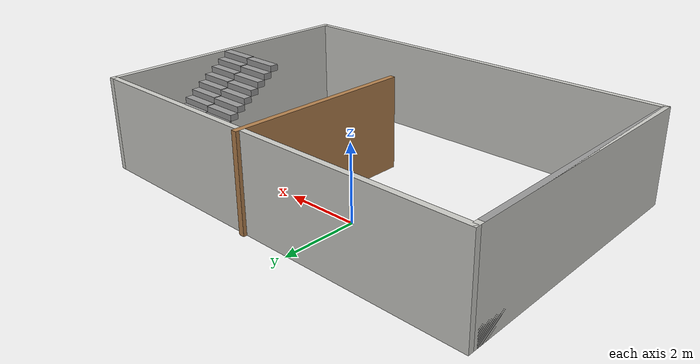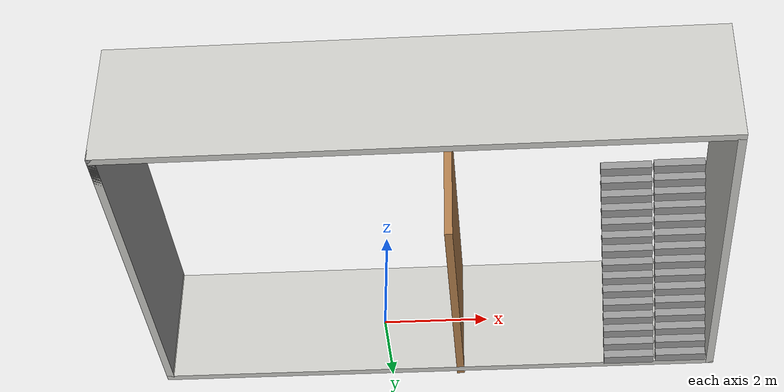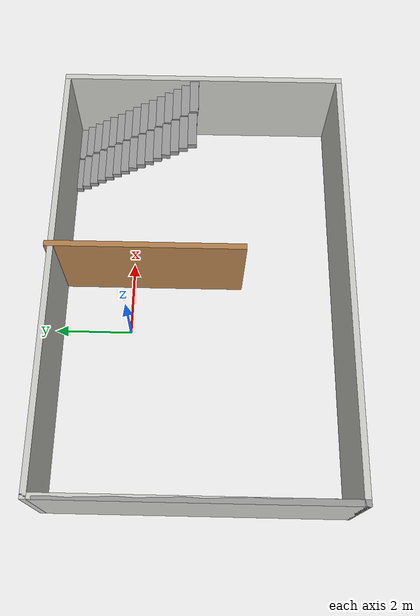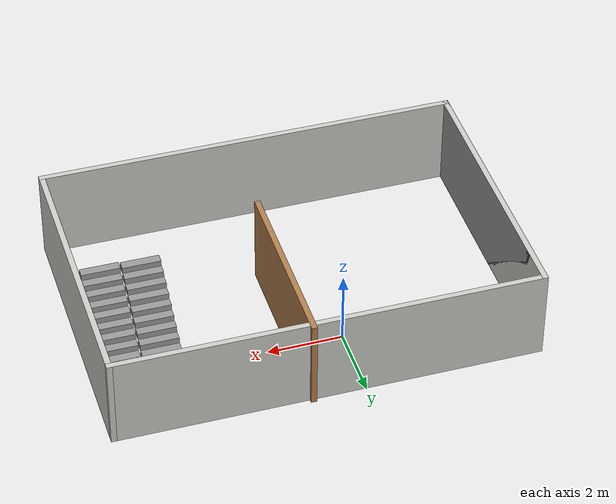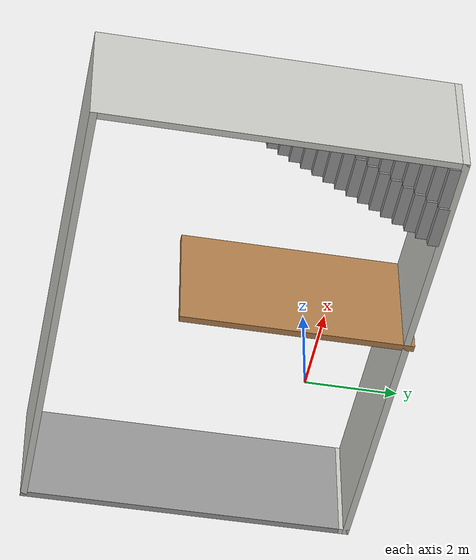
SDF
<?xml version='1.0'?>
<sdf version='1.7'>
  <model name='mondoscale'>
    <pose>0.928076 -1.74548 0 0 -0 0</pose>
    <link name='Stairs_0'>
      <visual name='Stairs_0_Visual_0'>
        <pose>4.94245 3.45112 0.083333 0 -0 0</pose>
        <geometry>
          <box>
            <size>1 0.233333 0.166667</size>
          </box>
        </geometry>
        <material>
          <script>
            <uri>file://media/materials/scripts/gazebo.material</uri>
            <name>Gazebo/Grey</name>
          </script>
          <ambient>1 1 1 1</ambient>
        </material>
        <meta>
          <layer>0</layer>
        </meta>
      </visual>
      <collision name='Stairs_0_Collision_0'>
        <geometry>
          <box>
            <size>1 0.233333 0.166667</size>
          </box>
        </geometry>
        <pose>4.94245 3.45112 0.083333 0 -0 0</pose>
      </collision>
      <visual name='Stairs_0_Visual_1'>
        <pose>4.94245 3.21779 0.25 0 -0 0</pose>
        <geometry>
          <box>
            <size>1 0.233333 0.166667</size>
          </box>
        </geometry>
        <material>
          <script>
            <uri>file://media/materials/scripts/gazebo.material</uri>
            <name>Gazebo/Grey</name>
          </script>
          <ambient>1 1 1 1</ambient>
        </material>
        <meta>
          <layer>0</layer>
        </meta>
      </visual>
      <collision name='Stairs_0_Collision_1'>
        <geometry>
          <box>
            <size>1 0.233333 0.166667</size>
          </box>
        </geometry>
        <pose>4.94245 3.21779 0.25 0 -0 0</pose>
      </collision>
      <visual name='Stairs_0_Visual_2'>
        <pose>4.94245 2.98446 0.416667 0 -0 0</pose>
        <geometry>
          <box>
            <size>1 0.233333 0.166667</size>
          </box>
        </geometry>
        <material>
          <script>
            <uri>file://media/materials/scripts/gazebo.material</uri>
            <name>Gazebo/Grey</name>
          </script>
          <ambient>1 1 1 1</ambient>
        </material>
        <meta>
          <layer>0</layer>
        </meta>
      </visual>
      <collision name='Stairs_0_Collision_2'>
        <geometry>
          <box>
            <size>1 0.233333 0.166667</size>
          </box>
        </geometry>
        <pose>4.94245 2.98446 0.416667 0 -0 0</pose>
      </collision>
      <visual name='Stairs_0_Visual_3'>
        <pose>4.94245 2.75112 0.583333 0 -0 0</pose>
        <geometry>
          <box>
            <size>1 0.233333 0.166667</size>
          </box>
        </geometry>
        <material>
          <script>
            <uri>file://media/materials/scripts/gazebo.material</uri>
            <name>Gazebo/Grey</name>
          </script>
          <ambient>1 1 1 1</ambient>
        </material>
        <meta>
          <layer>0</layer>
        </meta>
      </visual>
      <collision name='Stairs_0_Collision_3'>
        <geometry>
          <box>
            <size>1 0.233333 0.166667</size>
          </box>
        </geometry>
        <pose>4.94245 2.75112 0.583333 0 -0 0</pose>
      </collision>
      <visual name='Stairs_0_Visual_4'>
        <pose>4.94245 2.51779 0.75 0 -0 0</pose>
        <geometry>
          <box>
            <size>1 0.233333 0.166667</size>
          </box>
        </geometry>
        <material>
          <script>
            <uri>file://media/materials/scripts/gazebo.material</uri>
            <name>Gazebo/Grey</name>
          </script>
          <ambient>1 1 1 1</ambient>
        </material>
        <meta>
          <layer>0</layer>
        </meta>
      </visual>
      <collision name='Stairs_0_Collision_4'>
        <geometry>
          <box>
            <size>1 0.233333 0.166667</size>
          </box>
        </geometry>
        <pose>4.94245 2.51779 0.75 0 -0 0</pose>
      </collision>
      <visual name='Stairs_0_Visual_5'>
        <pose>4.94245 2.28446 0.916667 0 -0 0</pose>
        <geometry>
          <box>
            <size>1 0.233333 0.166667</size>
          </box>
        </geometry>
        <material>
          <script>
            <uri>file://media/materials/scripts/gazebo.material</uri>
            <name>Gazebo/Grey</name>
          </script>
          <ambient>1 1 1 1</ambient>
        </material>
        <meta>
          <layer>0</layer>
        </meta>
      </visual>
      <collision name='Stairs_0_Collision_5'>
        <geometry>
          <box>
            <size>1 0.233333 0.166667</size>
          </box>
        </geometry>
        <pose>4.94245 2.28446 0.916667 0 -0 0</pose>
      </collision>
      <visual name='Stairs_0_Visual_6'>
        <pose>4.94245 2.05112 1.08333 0 -0 0</pose>
        <geometry>
          <box>
            <size>1 0.233333 0.166667</size>
          </box>
        </geometry>
        <material>
          <script>
            <uri>file://media/materials/scripts/gazebo.material</uri>
            <name>Gazebo/Grey</name>
          </script>
          <ambient>1 1 1 1</ambient>
        </material>
        <meta>
          <layer>0</layer>
        </meta>
      </visual>
      <collision name='Stairs_0_Collision_6'>
        <geometry>
          <box>
            <size>1 0.233333 0.166667</size>
          </box>
        </geometry>
        <pose>4.94245 2.05112 1.08333 0 -0 0</pose>
      </collision>
      <visual name='Stairs_0_Visual_7'>
        <pose>4.94245 1.81779 1.25 0 -0 0</pose>
        <geometry>
          <box>
            <size>1 0.233333 0.166667</size>
          </box>
        </geometry>
        <material>
          <script>
            <uri>file://media/materials/scripts/gazebo.material</uri>
            <name>Gazebo/Grey</name>
          </script>
          <ambient>1 1 1 1</ambient>
        </material>
        <meta>
          <layer>0</layer>
        </meta>
      </visual>
      <collision name='Stairs_0_Collision_7'>
        <geometry>
          <box>
            <size>1 0.233333 0.166667</size>
          </box>
        </geometry>
        <pose>4.94245 1.81779 1.25 0 -0 0</pose>
      </collision>
      <visual name='Stairs_0_Visual_8'>
        <pose>4.94245 1.58446 1.41667 0 -0 0</pose>
        <geometry>
          <box>
            <size>1 0.233333 0.166667</size>
          </box>
        </geometry>
        <material>
          <script>
            <uri>file://media/materials/scripts/gazebo.material</uri>
            <name>Gazebo/Grey</name>
          </script>
          <ambient>1 1 1 1</ambient>
        </material>
        <meta>
          <layer>0</layer>
        </meta>
      </visual>
      <collision name='Stairs_0_Collision_8'>
        <geometry>
          <box>
            <size>1 0.233333 0.166667</size>
          </box>
        </geometry>
        <pose>4.94245 1.58446 1.41667 0 -0 0</pose>
      </collision>
      <visual name='Stairs_0_Visual_9'>
        <pose>4.94245 1.35112 1.58333 0 -0 0</pose>
        <geometry>
          <box>
            <size>1 0.233333 0.166667</size>
          </box>
        </geometry>
        <material>
          <script>
            <uri>file://media/materials/scripts/gazebo.material</uri>
            <name>Gazebo/Grey</name>
          </script>
          <ambient>1 1 1 1</ambient>
        </material>
        <meta>
          <layer>0</layer>
        </meta>
      </visual>
      <collision name='Stairs_0_Collision_9'>
        <geometry>
          <box>
            <size>1 0.233333 0.166667</size>
          </box>
        </geometry>
        <pose>4.94245 1.35112 1.58333 0 -0 0</pose>
      </collision>
      <visual name='Stairs_0_Visual_10'>
        <pose>4.94245 1.11779 1.75 0 -0 0</pose>
        <geometry>
          <box>
            <size>1 0.233333 0.166667</size>
          </box>
        </geometry>
        <material>
          <script>
            <uri>file://media/materials/scripts/gazebo.material</uri>
            <name>Gazebo/Grey</name>
          </script>
          <ambient>1 1 1 1</ambient>
        </material>
        <meta>
          <layer>0</layer>
        </meta>
      </visual>
      <collision name='Stairs_0_Collision_10'>
        <geometry>
          <box>
            <size>1 0.233333 0.166667</size>
          </box>
        </geometry>
        <pose>4.94245 1.11779 1.75 0 -0 0</pose>
      </collision>
      <visual name='Stairs_0_Visual_11'>
        <pose>4.94245 0.884456 1.91667 0 -0 0</pose>
        <geometry>
          <box>
            <size>1 0.233333 0.166667</size>
          </box>
        </geometry>
        <material>
          <script>
            <uri>file://media/materials/scripts/gazebo.material</uri>
            <name>Gazebo/Grey</name>
          </script>
          <ambient>1 1 1 1</ambient>
        </material>
        <meta>
          <layer>0</layer>
        </meta>
      </visual>
      <collision name='Stairs_0_Collision_11'>
        <geometry>
          <box>
            <size>1 0.233333 0.166667</size>
          </box>
        </geometry>
        <pose>4.94245 0.884456 1.91667 0 -0 0</pose>
      </collision>
      <visual name='Stairs_0_Visual_12'>
        <pose>4.94245 0.651122 2.08333 0 -0 0</pose>
        <geometry>
          <box>
            <size>1 0.233333 0.166667</size>
          </box>
        </geometry>
        <material>
          <script>
            <uri>file://media/materials/scripts/gazebo.material</uri>
            <name>Gazebo/Grey</name>
          </script>
          <ambient>1 1 1 1</ambient>
        </material>
        <meta>
          <layer>0</layer>
        </meta>
      </visual>
      <collision name='Stairs_0_Collision_12'>
        <geometry>
          <box>
            <size>1 0.233333 0.166667</size>
          </box>
        </geometry>
        <pose>4.94245 0.651122 2.08333 0 -0 0</pose>
      </collision>
      <visual name='Stairs_0_Visual_13'>
        <pose>4.94245 0.417789 2.25 0 -0 0</pose>
        <geometry>
          <box>
            <size>1 0.233333 0.166667</size>
          </box>
        </geometry>
        <material>
          <script>
            <uri>file://media/materials/scripts/gazebo.material</uri>
            <name>Gazebo/Grey</name>
          </script>
          <ambient>1 1 1 1</ambient>
        </material>
        <meta>
          <layer>0</layer>
        </meta>
      </visual>
      <collision name='Stairs_0_Collision_13'>
        <geometry>
          <box>
            <size>1 0.233333 0.166667</size>
          </box>
        </geometry>
        <pose>4.94245 0.417789 2.25 0 -0 0</pose>
      </collision>
      <visual name='Stairs_0_Visual_14'>
        <pose>4.94245 0.184456 2.41667 0 -0 0</pose>
        <geometry>
          <box>
            <size>1 0.233333 0.166667</size>
          </box>
        </geometry>
        <material>
          <script>
            <uri>file://media/materials/scripts/gazebo.material</uri>
            <name>Gazebo/Grey</name>
          </script>
          <ambient>1 1 1 1</ambient>
        </material>
        <meta>
          <layer>0</layer>
        </meta>
      </visual>
      <collision name='Stairs_0_Collision_14'>
        <geometry>
          <box>
            <size>1 0.233333 0.166667</size>
          </box>
        </geometry>
        <pose>4.94245 0.184456 2.41667 0 -0 0</pose>
      </collision>
    </link>
    <link name='Stairs_1'>
      <visual name='Stairs_1_Visual_0'>
        <pose>3.90238 3.48171 0.083333 0 -0 0</pose>
        <geometry>
          <box>
            <size>1 0.233333 0.166667</size>
          </box>
        </geometry>
        <material>
          <script>
            <uri>file://media/materials/scripts/gazebo.material</uri>
            <name>Gazebo/Grey</name>
          </script>
          <ambient>1 1 1 1</ambient>
        </material>
        <meta>
          <layer>0</layer>
        </meta>
      </visual>
      <collision name='Stairs_1_Collision_0'>
        <geometry>
          <box>
            <size>1 0.233333 0.166667</size>
          </box>
        </geometry>
        <pose>3.90238 3.48171 0.083333 0 -0 0</pose>
      </collision>
      <visual name='Stairs_1_Visual_1'>
        <pose>3.90238 3.24838 0.25 0 -0 0</pose>
        <geometry>
          <box>
            <size>1 0.233333 0.166667</size>
          </box>
        </geometry>
        <material>
          <script>
            <uri>file://media/materials/scripts/gazebo.material</uri>
            <name>Gazebo/Grey</name>
          </script>
          <ambient>1 1 1 1</ambient>
        </material>
        <meta>
          <layer>0</layer>
        </meta>
      </visual>
      <collision name='Stairs_1_Collision_1'>
        <geometry>
          <box>
            <size>1 0.233333 0.166667</size>
          </box>
        </geometry>
        <pose>3.90238 3.24838 0.25 0 -0 0</pose>
      </collision>
      <visual name='Stairs_1_Visual_2'>
        <pose>3.90238 3.01505 0.416667 0 -0 0</pose>
        <geometry>
          <box>
            <size>1 0.233333 0.166667</size>
          </box>
        </geometry>
        <material>
          <script>
            <uri>file://media/materials/scripts/gazebo.material</uri>
            <name>Gazebo/Grey</name>
          </script>
          <ambient>1 1 1 1</ambient>
        </material>
        <meta>
          <layer>0</layer>
        </meta>
      </visual>
      <collision name='Stairs_1_Collision_2'>
        <geometry>
          <box>
            <size>1 0.233333 0.166667</size>
          </box>
        </geometry>
        <pose>3.90238 3.01505 0.416667 0 -0 0</pose>
      </collision>
      <visual name='Stairs_1_Visual_3'>
        <pose>3.90238 2.78171 0.583333 0 -0 0</pose>
        <geometry>
          <box>
            <size>1 0.233333 0.166667</size>
          </box>
        </geometry>
        <material>
          <script>
            <uri>file://media/materials/scripts/gazebo.material</uri>
            <name>Gazebo/Grey</name>
          </script>
          <ambient>1 1 1 1</ambient>
        </material>
        <meta>
          <layer>0</layer>
        </meta>
      </visual>
      <collision name='Stairs_1_Collision_3'>
        <geometry>
          <box>
            <size>1 0.233333 0.166667</size>
          </box>
        </geometry>
        <pose>3.90238 2.78171 0.583333 0 -0 0</pose>
      </collision>
      <visual name='Stairs_1_Visual_4'>
        <pose>3.90238 2.54838 0.75 0 -0 0</pose>
        <geometry>
          <box>
            <size>1 0.233333 0.166667</size>
          </box>
        </geometry>
        <material>
          <script>
            <uri>file://media/materials/scripts/gazebo.material</uri>
            <name>Gazebo/Grey</name>
          </script>
          <ambient>1 1 1 1</ambient>
        </material>
        <meta>
          <layer>0</layer>
        </meta>
      </visual>
      <collision name='Stairs_1_Collision_4'>
        <geometry>
          <box>
            <size>1 0.233333 0.166667</size>
          </box>
        </geometry>
        <pose>3.90238 2.54838 0.75 0 -0 0</pose>
      </collision>
      <visual name='Stairs_1_Visual_5'>
        <pose>3.90238 2.31505 0.916667 0 -0 0</pose>
        <geometry>
          <box>
            <size>1 0.233333 0.166667</size>
          </box>
        </geometry>
        <material>
          <script>
            <uri>file://media/materials/scripts/gazebo.material</uri>
            <name>Gazebo/Grey</name>
          </script>
          <ambient>1 1 1 1</ambient>
        </material>
        <meta>
          <layer>0</layer>
        </meta>
      </visual>
      <collision name='Stairs_1_Collision_5'>
        <geometry>
          <box>
            <size>1 0.233333 0.166667</size>
          </box>
        </geometry>
        <pose>3.90238 2.31505 0.916667 0 -0 0</pose>
      </collision>
      <visual name='Stairs_1_Visual_6'>
        <pose>3.90238 2.08171 1.08333 0 -0 0</pose>
        <geometry>
          <box>
            <size>1 0.233333 0.166667</size>
          </box>
        </geometry>
        <material>
          <script>
            <uri>file://media/materials/scripts/gazebo.material</uri>
            <name>Gazebo/Grey</name>
          </script>
          <ambient>1 1 1 1</ambient>
        </material>
        <meta>
          <layer>0</layer>
        </meta>
      </visual>
      <collision name='Stairs_1_Collision_6'>
        <geometry>
          <box>
            <size>1 0.233333 0.166667</size>
          </box>
        </geometry>
        <pose>3.90238 2.08171 1.08333 0 -0 0</pose>
      </collision>
      <visual name='Stairs_1_Visual_7'>
        <pose>3.90238 1.84838 1.25 0 -0 0</pose>
        <geometry>
          <box>
            <size>1 0.233333 0.166667</size>
          </box>
        </geometry>
        <material>
          <script>
            <uri>file://media/materials/scripts/gazebo.material</uri>
            <name>Gazebo/Grey</name>
          </script>
          <ambient>1 1 1 1</ambient>
        </material>
        <meta>
          <layer>0</layer>
        </meta>
      </visual>
      <collision name='Stairs_1_Collision_7'>
        <geometry>
          <box>
            <size>1 0.233333 0.166667</size>
          </box>
        </geometry>
        <pose>3.90238 1.84838 1.25 0 -0 0</pose>
      </collision>
      <visual name='Stairs_1_Visual_8'>
        <pose>3.90238 1.61505 1.41667 0 -0 0</pose>
        <geometry>
          <box>
            <size>1 0.233333 0.166667</size>
          </box>
        </geometry>
        <material>
          <script>
            <uri>file://media/materials/scripts/gazebo.material</uri>
            <name>Gazebo/Grey</name>
          </script>
          <ambient>1 1 1 1</ambient>
        </material>
        <meta>
          <layer>0</layer>
        </meta>
      </visual>
      <collision name='Stairs_1_Collision_8'>
        <geometry>
          <box>
            <size>1 0.233333 0.166667</size>
          </box>
        </geometry>
        <pose>3.90238 1.61505 1.41667 0 -0 0</pose>
      </collision>
      <visual name='Stairs_1_Visual_9'>
        <pose>3.90238 1.38171 1.58333 0 -0 0</pose>
        <geometry>
          <box>
            <size>1 0.233333 0.166667</size>
          </box>
        </geometry>
        <material>
          <script>
            <uri>file://media/materials/scripts/gazebo.material</uri>
            <name>Gazebo/Grey</name>
          </script>
          <ambient>1 1 1 1</ambient>
        </material>
        <meta>
          <layer>0</layer>
        </meta>
      </visual>
      <collision name='Stairs_1_Collision_9'>
        <geometry>
          <box>
            <size>1 0.233333 0.166667</size>
          </box>
        </geometry>
        <pose>3.90238 1.38171 1.58333 0 -0 0</pose>
      </collision>
      <visual name='Stairs_1_Visual_10'>
        <pose>3.90238 1.14838 1.75 0 -0 0</pose>
        <geometry>
          <box>
            <size>1 0.233333 0.166667</size>
          </box>
        </geometry>
        <material>
          <script>
            <uri>file://media/materials/scripts/gazebo.material</uri>
            <name>Gazebo/Grey</name>
          </script>
          <ambient>1 1 1 1</ambient>
        </material>
        <meta>
          <layer>0</layer>
        </meta>
      </visual>
      <collision name='Stairs_1_Collision_10'>
        <geometry>
          <box>
            <size>1 0.233333 0.166667</size>
          </box>
        </geometry>
        <pose>3.90238 1.14838 1.75 0 -0 0</pose>
      </collision>
      <visual name='Stairs_1_Visual_11'>
        <pose>3.90238 0.915046 1.91667 0 -0 0</pose>
        <geometry>
          <box>
            <size>1 0.233333 0.166667</size>
          </box>
        </geometry>
        <material>
          <script>
            <uri>file://media/materials/scripts/gazebo.material</uri>
            <name>Gazebo/Grey</name>
          </script>
          <ambient>1 1 1 1</ambient>
        </material>
        <meta>
          <layer>0</layer>
        </meta>
      </visual>
      <collision name='Stairs_1_Collision_11'>
        <geometry>
          <box>
            <size>1 0.233333 0.166667</size>
          </box>
        </geometry>
        <pose>3.90238 0.915046 1.91667 0 -0 0</pose>
      </collision>
      <visual name='Stairs_1_Visual_12'>
        <pose>3.90238 0.681712 2.08333 0 -0 0</pose>
        <geometry>
          <box>
            <size>1 0.233333 0.166667</size>
          </box>
        </geometry>
        <material>
          <script>
            <uri>file://media/materials/scripts/gazebo.material</uri>
            <name>Gazebo/Grey</name>
          </script>
          <ambient>1 1 1 1</ambient>
        </material>
        <meta>
          <layer>0</layer>
        </meta>
      </visual>
      <collision name='Stairs_1_Collision_12'>
        <geometry>
          <box>
            <size>1 0.233333 0.166667</size>
          </box>
        </geometry>
        <pose>3.90238 0.681712 2.08333 0 -0 0</pose>
      </collision>
      <visual name='Stairs_1_Visual_13'>
        <pose>3.90238 0.448379 2.25 0 -0 0</pose>
        <geometry>
          <box>
            <size>1 0.233333 0.166667</size>
          </box>
        </geometry>
        <material>
          <script>
            <uri>file://media/materials/scripts/gazebo.material</uri>
            <name>Gazebo/Grey</name>
          </script>
          <ambient>1 1 1 1</ambient>
        </material>
        <meta>
          <layer>0</layer>
        </meta>
      </visual>
      <collision name='Stairs_1_Collision_13'>
        <geometry>
          <box>
            <size>1 0.233333 0.166667</size>
          </box>
        </geometry>
        <pose>3.90238 0.448379 2.25 0 -0 0</pose>
      </collision>
      <visual name='Stairs_1_Visual_14'>
        <pose>3.90238 0.215046 2.41667 0 -0 0</pose>
        <geometry>
          <box>
            <size>1 0.233333 0.166667</size>
          </box>
        </geometry>
        <material>
          <script>
            <uri>file://media/materials/scripts/gazebo.material</uri>
            <name>Gazebo/Grey</name>
          </script>
          <ambient>1 1 1 1</ambient>
        </material>
        <meta>
          <layer>0</layer>
        </meta>
      </visual>
      <collision name='Stairs_1_Collision_14'>
        <geometry>
          <box>
            <size>1 0.233333 0.166667</size>
          </box>
        </geometry>
        <pose>3.90238 0.215046 2.41667 0 -0 0</pose>
      </collision>
    </link>
    <link name='Wall_15'>
      <collision name='Wall_15_Collision'>
        <geometry>
          <box>
            <size>5 0.15 2.5</size>
          </box>
        </geometry>
        <pose>0 0 1.25 0 -0 0</pose>
      </collision>
      <visual name='Wall_15_Visual'>
        <pose>0 0 1.25 0 -0 0</pose>
        <geometry>
          <box>
            <size>5 0.15 2.5</size>
          </box>
        </geometry>
        <material>
          <script>
            <uri>file://media/materials/scripts/gazebo.material</uri>
            <name>Gazebo/Wood</name>
          </script>
          <ambient>1 1 1 1</ambient>
        </material>
        <meta>
          <layer>0</layer>
        </meta>
      </visual>
      <pose>0.464831 1.29711 0 0 -0 1.5708</pose>
    </link>
    <link name='Wall_4'>
      <collision name='Wall_4_Collision'>
        <geometry>
          <box>
            <size>7.25 0.15 2.5</size>
          </box>
        </geometry>
        <pose>0 0 1.25 0 -0 0</pose>
      </collision>
      <visual name='Wall_4_Visual'>
        <pose>0 0 1.25 0 -0 0</pose>
        <geometry>
          <box>
            <size>7.25 0.15 2.5</size>
          </box>
        </geometry>
        <material>
          <script>
            <uri>file://media/materials/scripts/gazebo.material</uri>
            <name>Gazebo/Grey</name>
          </script>
          <ambient>1 1 1 1</ambient>
        </material>
        <meta>
          <layer>0</layer>
        </meta>
      </visual>
      <pose>-5.55 -0.172109 0 0 -0 -1.5708</pose>
    </link>
    <link name='Wall_5'>
      <collision name='Wall_5_Collision'>
        <geometry>
          <box>
            <size>11.25 0.15 2.5</size>
          </box>
        </geometry>
        <pose>0 0 1.25 0 -0 0</pose>
      </collision>
      <visual name='Wall_5_Visual'>
        <pose>0 0 1.25 0 -0 0</pose>
        <geometry>
          <box>
            <size>11.25 0.15 2.5</size>
          </box>
        </geometry>
        <material>
          <script>
            <uri>file://media/materials/scripts/gazebo.material</uri>
            <name>Gazebo/CeilingTiled</name>
          </script>
          <ambient>1 1 1 1</ambient>
        </material>
        <meta>
          <layer>0</layer>
        </meta>
      </visual>
      <pose>0 -3.72211 0 0 -0 0</pose>
    </link>
    <link name='Wall_6'>
      <collision name='Wall_6_Collision'>
        <geometry>
          <box>
            <size>7.5 0.15 2.5</size>
          </box>
        </geometry>
        <pose>0 0 1.25 0 -0 0</pose>
      </collision>
      <visual name='Wall_6_Visual'>
        <pose>0 0 1.25 0 -0 0</pose>
        <geometry>
          <box>
            <size>7.5 0.15 2.5</size>
          </box>
        </geometry>
        <material>
          <script>
            <uri>file://media/materials/scripts/gazebo.material</uri>
            <name>Gazebo/CeilingTiled</name>
          </script>
          <ambient>1 1 1 1</ambient>
        </material>
        <meta>
          <layer>0</layer>
        </meta>
      </visual>
      <pose>5.55 -0.047109 0 0 -0 1.5708</pose>
    </link>
    <link name='Wall_7'>
      <collision name='Wall_7_Collision'>
        <geometry>
          <box>
            <size>11.25 0.15 2.5</size>
          </box>
        </geometry>
        <pose>0 0 1.25 0 -0 0</pose>
      </collision>
      <visual name='Wall_7_Visual'>
        <pose>0 0 1.25 0 -0 0</pose>
        <geometry>
          <box>
            <size>11.25 0.15 2.5</size>
          </box>
        </geometry>
        <material>
          <script>
            <uri>file://media/materials/scripts/gazebo.material</uri>
            <name>Gazebo/CeilingTiled</name>
          </script>
          <ambient>1 1 1 1</ambient>
        </material>
        <meta>
          <layer>0</layer>
        </meta>
      </visual>
      <pose>0 3.62789 0 0 -0 3.14159</pose>
    </link>
    <link name='Wall_8'>
      <collision name='Wall_8_Collision'>
        <geometry>
          <box>
            <size>7.5 0.15 2.5</size>
          </box>
        </geometry>
        <pose>0 0 1.25 0 -0 0</pose>
      </collision>
      <visual name='Wall_8_Visual'>
        <pose>0 0 1.25 0 -0 0</pose>
        <geometry>
          <box>
            <size>7.5 0.15 2.5</size>
          </box>
        </geometry>
        <material>
          <script>
            <uri>file://media/materials/scripts/gazebo.material</uri>
            <name>Gazebo/CeilingTiled</name>
          </script>
          <ambient>1 1 1 1</ambient>
        </material>
        <meta>
          <layer>0</layer>
        </meta>
      </visual>
      <pose>-5.55 -0.047109 0 0 -0 -1.5708</pose>
    </link>
    <static>1</static>
  </model>
</sdf>
